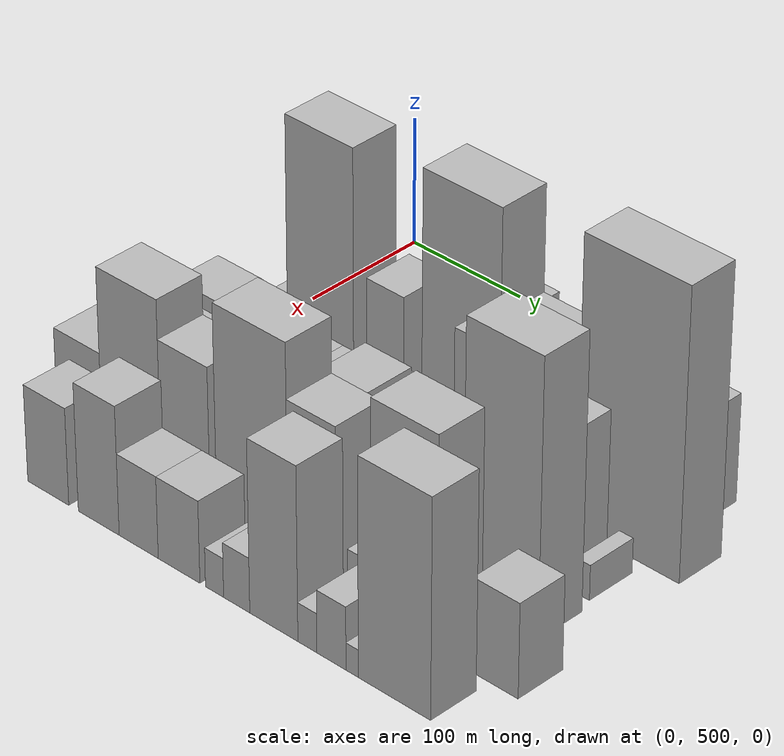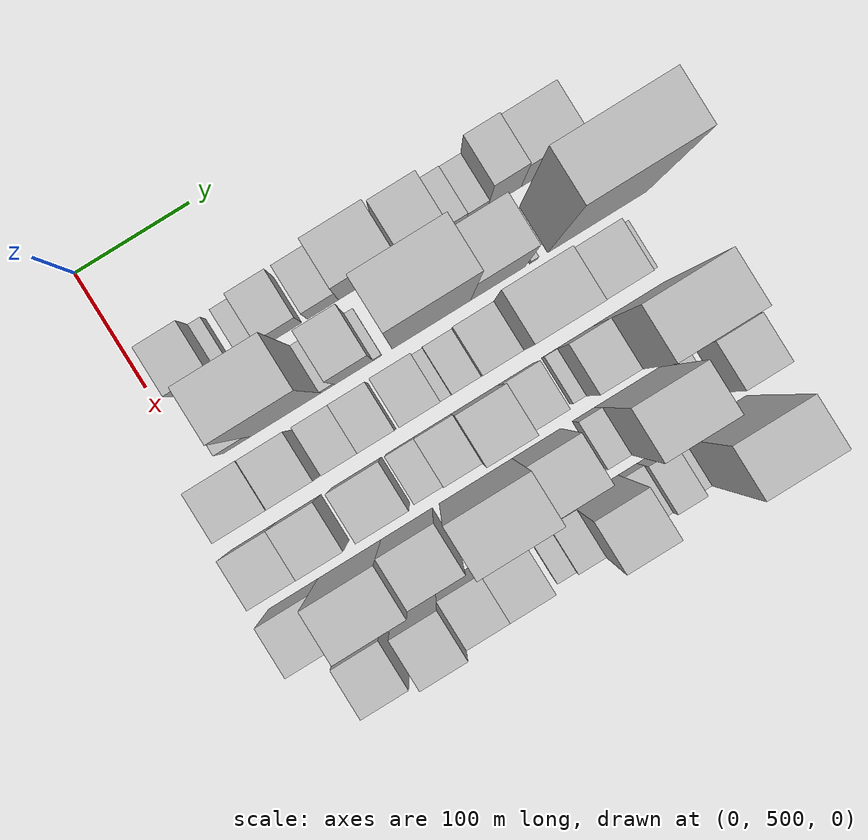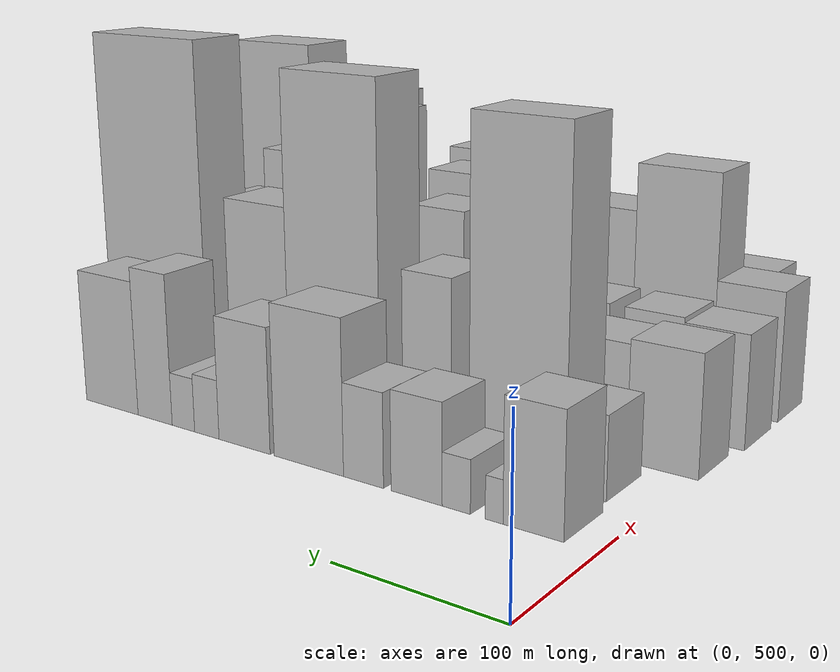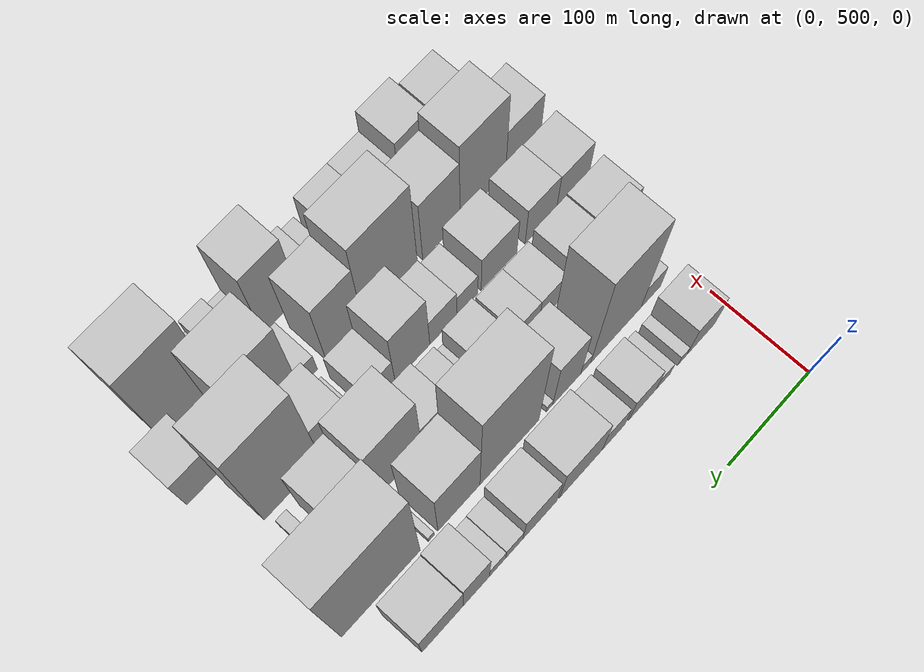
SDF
<sdf version="1.6">
 <world name="default">
  <model name="building_41">
   <static>1</static>
   <pose>100.0000 536.8398 0 0.000000 0.000000 0.000000</pose>
   <link name="link">
    <pose>0 0 34.50 0 0 0</pose>
    <collision name="collision"><geometry><box><size>40.0000 34.9624 69.0000</size></box></geometry></collision>
    <visual name="visual">
     <cast_shadows>0</cast_shadows>
     <geometry><box><size>40.0000 34.9624 69.0000</size></box></geometry>
     <material>
      <script>
       <uri>model://HANNAS_wall/materials/scripts</uri>
       <uri>model://HANNAS_wall/materials/textures</uri>
       <name>vrc/HANNAS_wall</name>
      </script>
     </material>
    </visual>
   </link>
  </model>
  <model name="building_42">
   <static>1</static>
   <pose>100.0000 559.6195 0 0.000000 0.000000 0.000000</pose>
   <link name="link">
    <pose>0 0 12.00 0 0 0</pose>
    <collision name="collision"><geometry><box><size>40.0000 10.5969 24.0000</size></box></geometry></collision>
    <visual name="visual">
     <cast_shadows>0</cast_shadows>
     <geometry><box><size>40.0000 10.5969 24.0000</size></box></geometry>
     <material>
      <script>
       <uri>model://HANNAS_wall/materials/scripts</uri>
       <uri>model://HANNAS_wall/materials/textures</uri>
       <name>vrc/HANNAS_wall</name>
      </script>
     </material>
    </visual>
   </link>
  </model>
  <model name="building_43">
   <static>1</static>
   <pose>100.0000 582.6176 0 0.000000 0.000000 0.000000</pose>
   <link name="link">
    <pose>0 0 15.00 0 0 0</pose>
    <collision name="collision"><geometry><box><size>40.0000 17.3994 30.0000</size></box></geometry></collision>
    <visual name="visual">
     <cast_shadows>0</cast_shadows>
     <geometry><box><size>40.0000 17.3994 30.0000</size></box></geometry>
     <material>
      <script>
       <uri>model://HANNAS_wall/materials/scripts</uri>
       <uri>model://HANNAS_wall/materials/textures</uri>
       <name>vrc/HANNAS_wall</name>
      </script>
     </material>
    </visual>
   </link>
  </model>
  <model name="building_44">
   <static>1</static>
   <pose>100.0000 607.7727 0 0.000000 0.000000 0.000000</pose>
   <link name="link">
    <pose>0 0 28.50 0 0 0</pose>
    <collision name="collision"><geometry><box><size>40.0000 32.9106 57.0000</size></box></geometry></collision>
    <visual name="visual">
     <cast_shadows>0</cast_shadows>
     <geometry><box><size>40.0000 32.9106 57.0000</size></box></geometry>
     <material>
      <script>
       <uri>model://HANNAS_wall/materials/scripts</uri>
       <uri>model://HANNAS_wall/materials/textures</uri>
       <name>vrc/HANNAS_wall</name>
      </script>
     </material>
    </visual>
   </link>
  </model>
  <model name="building_45">
   <static>1</static>
   <pose>100.0000 642.7919 0 0.000000 0.000000 0.000000</pose>
   <link name="link">
    <pose>0 0 27.00 0 0 0</pose>
    <collision name="collision"><geometry><box><size>40.0000 27.1279 54.0000</size></box></geometry></collision>
    <visual name="visual">
     <cast_shadows>0</cast_shadows>
     <geometry><box><size>40.0000 27.1279 54.0000</size></box></geometry>
     <material>
      <script>
       <uri>model://HANNAS_wall/materials/scripts</uri>
       <uri>model://HANNAS_wall/materials/textures</uri>
       <name>vrc/HANNAS_wall</name>
      </script>
     </material>
    </visual>
   </link>
  </model>
  <model name="building_46">
   <static>1</static>
   <pose>100.0000 681.2926 0 0.000000 0.000000 0.000000</pose>
   <link name="link">
    <pose>0 0 45.00 0 0 0</pose>
    <collision name="collision"><geometry><box><size>40.0000 49.8735 90.0000</size></box></geometry></collision>
    <visual name="visual">
     <cast_shadows>0</cast_shadows>
     <geometry><box><size>40.0000 49.8735 90.0000</size></box></geometry>
     <material>
      <script>
       <uri>model://HANNAS_wall/materials/scripts</uri>
       <uri>model://HANNAS_wall/materials/textures</uri>
       <name>vrc/HANNAS_wall</name>
      </script>
     </material>
    </visual>
   </link>
  </model>
  <model name="building_47">
   <static>1</static>
   <pose>100.0000 728.8882 0 0.000000 0.000000 0.000000</pose>
   <link name="link">
    <pose>0 0 37.50 0 0 0</pose>
    <collision name="collision"><geometry><box><size>40.0000 39.3178 75.0000</size></box></geometry></collision>
    <visual name="visual">
     <cast_shadows>0</cast_shadows>
     <geometry><box><size>40.0000 39.3178 75.0000</size></box></geometry>
     <material>
      <script>
       <uri>model://HANNAS_wall/materials/scripts</uri>
       <uri>model://HANNAS_wall/materials/textures</uri>
       <name>vrc/HANNAS_wall</name>
      </script>
     </material>
    </visual>
   </link>
  </model>
  <model name="building_48">
   <static>1</static>
   <pose>100.0000 758.3306 0 0.000000 0.000000 0.000000</pose>
   <link name="link">
    <pose>0 0 18.00 0 0 0</pose>
    <collision name="collision"><geometry><box><size>40.0000 19.5669 36.0000</size></box></geometry></collision>
    <visual name="visual">
     <cast_shadows>0</cast_shadows>
     <geometry><box><size>40.0000 19.5669 36.0000</size></box></geometry>
     <material>
      <script>
       <uri>model://HANNAS_wall/materials/scripts</uri>
       <uri>model://HANNAS_wall/materials/textures</uri>
       <name>vrc/HANNAS_wall</name>
      </script>
     </material>
    </visual>
   </link>
  </model>
  <model name="building_49">
   <static>1</static>
   <pose>100.0000 777.3705 0 0.000000 0.000000 0.000000</pose>
   <link name="link">
    <pose>0 0 16.50 0 0 0</pose>
    <collision name="collision"><geometry><box><size>40.0000 18.5128 33.0000</size></box></geometry></collision>
    <visual name="visual">
     <cast_shadows>0</cast_shadows>
     <geometry><box><size>40.0000 18.5128 33.0000</size></box></geometry>
     <material>
      <script>
       <uri>model://HANNAS_wall/materials/scripts</uri>
       <uri>model://HANNAS_wall/materials/textures</uri>
       <name>vrc/HANNAS_wall</name>
      </script>
     </material>
    </visual>
   </link>
  </model>
  <model name="building_50">
   <static>1</static>
   <pose>100.0000 801.1415 0 0.000000 0.000000 0.000000</pose>
   <link name="link">
    <pose>0 0 46.50 0 0 0</pose>
    <collision name="collision"><geometry><box><size>40.0000 29.0293 93.0000</size></box></geometry></collision>
    <visual name="visual">
     <cast_shadows>0</cast_shadows>
     <geometry><box><size>40.0000 29.0293 93.0000</size></box></geometry>
     <material>
      <script>
       <uri>model://HANNAS_wall/materials/scripts</uri>
       <uri>model://HANNAS_wall/materials/textures</uri>
       <name>vrc/HANNAS_wall</name>
      </script>
     </material>
    </visual>
   </link>
  </model>
  <model name="building_51">
   <static>1</static>
   <pose>100.0000 838.6315 0 0.000000 0.000000 0.000000</pose>
   <link name="link">
    <pose>0 0 42.00 0 0 0</pose>
    <collision name="collision"><geometry><box><size>40.0000 45.9507 84.0000</size></box></geometry></collision>
    <visual name="visual">
     <cast_shadows>0</cast_shadows>
     <geometry><box><size>40.0000 45.9507 84.0000</size></box></geometry>
     <material>
      <script>
       <uri>model://HANNAS_wall/materials/scripts</uri>
       <uri>model://HANNAS_wall/materials/textures</uri>
       <name>vrc/HANNAS_wall</name>
      </script>
     </material>
    </visual>
   </link>
  </model>
  <model name="building_94">
   <static>1</static>
   <pose>152.0000 535.8931 0 0.000000 0.000000 0.000000</pose>
   <link name="link">
    <pose>0 0 24.00 0 0 0</pose>
    <collision name="collision"><geometry><box><size>40.0000 24.1383 48.0000</size></box></geometry></collision>
    <visual name="visual">
     <cast_shadows>0</cast_shadows>
     <geometry><box><size>40.0000 24.1383 48.0000</size></box></geometry>
     <material>
      <script>
       <uri>model://HANNAS_wall/materials/scripts</uri>
       <uri>model://HANNAS_wall/materials/textures</uri>
       <name>vrc/HANNAS_wall</name>
      </script>
     </material>
    </visual>
   </link>
  </model>
  <model name="building_95">
   <static>1</static>
   <pose>152.0000 578.5690 0 0.000000 0.000000 0.000000</pose>
   <link name="link">
    <pose>0 0 99.00 0 0 0</pose>
    <collision name="collision"><geometry><box><size>40.0000 61.2135 198.0000</size></box></geometry></collision>
    <visual name="visual">
     <cast_shadows>0</cast_shadows>
     <geometry><box><size>40.0000 61.2135 198.0000</size></box></geometry>
     <material>
      <script>
       <uri>model://HANNAS_wall/materials/scripts</uri>
       <uri>model://HANNAS_wall/materials/textures</uri>
       <name>vrc/HANNAS_wall</name>
      </script>
     </material>
    </visual>
   </link>
  </model>
  <model name="building_96">
   <static>1</static>
   <pose>152.0000 615.1101 0 0.000000 0.000000 0.000000</pose>
   <link name="link">
    <pose>0 0 12.00 0 0 0</pose>
    <collision name="collision"><geometry><box><size>40.0000 11.8686 24.0000</size></box></geometry></collision>
    <visual name="visual">
     <cast_shadows>0</cast_shadows>
     <geometry><box><size>40.0000 11.8686 24.0000</size></box></geometry>
     <material>
      <script>
       <uri>model://HANNAS_wall/materials/scripts</uri>
       <uri>model://HANNAS_wall/materials/textures</uri>
       <name>vrc/HANNAS_wall</name>
      </script>
     </material>
    </visual>
   </link>
  </model>
  <model name="building_97">
   <static>1</static>
   <pose>152.0000 637.7986 0 0.000000 0.000000 0.000000</pose>
   <link name="link">
    <pose>0 0 52.50 0 0 0</pose>
    <collision name="collision"><geometry><box><size>40.0000 33.5085 105.0000</size></box></geometry></collision>
    <visual name="visual">
     <cast_shadows>0</cast_shadows>
     <geometry><box><size>40.0000 33.5085 105.0000</size></box></geometry>
     <material>
      <script>
       <uri>model://HANNAS_wall/materials/scripts</uri>
       <uri>model://HANNAS_wall/materials/textures</uri>
       <name>vrc/HANNAS_wall</name>
      </script>
     </material>
    </visual>
   </link>
  </model>
  <model name="building_98">
   <static>1</static>
   <pose>152.0000 658.2584 0 0.000000 0.000000 0.000000</pose>
   <link name="link">
    <pose>0 0 7.50 0 0 0</pose>
    <collision name="collision"><geometry><box><size>40.0000 7.4111 15.0000</size></box></geometry></collision>
    <visual name="visual">
     <cast_shadows>0</cast_shadows>
     <geometry><box><size>40.0000 7.4111 15.0000</size></box></geometry>
     <material>
      <script>
       <uri>model://HANNAS_wall/materials/scripts</uri>
       <uri>model://HANNAS_wall/materials/textures</uri>
       <name>vrc/HANNAS_wall</name>
      </script>
     </material>
    </visual>
   </link>
  </model>
  <model name="building_99">
   <static>1</static>
   <pose>152.0000 705.1736 0 0.000000 0.000000 0.000000</pose>
   <link name="link">
    <pose>0 0 105.00 0 0 0</pose>
    <collision name="collision"><geometry><box><size>40.0000 68.4195 210.0000</size></box></geometry></collision>
    <visual name="visual">
     <cast_shadows>0</cast_shadows>
     <geometry><box><size>40.0000 68.4195 210.0000</size></box></geometry>
     <material>
      <script>
       <uri>model://HANNAS_wall/materials/scripts</uri>
       <uri>model://HANNAS_wall/materials/textures</uri>
       <name>vrc/HANNAS_wall</name>
      </script>
     </material>
    </visual>
   </link>
  </model>
  <model name="building_100">
   <static>1</static>
   <pose>152.0000 763.2344 0 0.000000 0.000000 0.000000</pose>
   <link name="link">
    <pose>0 0 64.50 0 0 0</pose>
    <collision name="collision"><geometry><box><size>40.0000 47.7020 129.0000</size></box></geometry></collision>
    <visual name="visual">
     <cast_shadows>0</cast_shadows>
     <geometry><box><size>40.0000 47.7020 129.0000</size></box></geometry>
     <material>
      <script>
       <uri>model://HANNAS_wall/materials/scripts</uri>
       <uri>model://HANNAS_wall/materials/textures</uri>
       <name>vrc/HANNAS_wall</name>
      </script>
     </material>
    </visual>
   </link>
  </model>
  <model name="building_101">
   <static>1</static>
   <pose>152.0000 794.4815 0 0.000000 0.000000 0.000000</pose>
   <link name="link">
    <pose>0 0 7.50 0 0 0</pose>
    <collision name="collision"><geometry><box><size>40.0000 6.7923 15.0000</size></box></geometry></collision>
    <visual name="visual">
     <cast_shadows>0</cast_shadows>
     <geometry><box><size>40.0000 6.7923 15.0000</size></box></geometry>
     <material>
      <script>
       <uri>model://HANNAS_wall/materials/scripts</uri>
       <uri>model://HANNAS_wall/materials/textures</uri>
       <name>vrc/HANNAS_wall</name>
      </script>
     </material>
    </visual>
   </link>
  </model>
  <model name="building_102">
   <static>1</static>
   <pose>152.0000 850.2485 0 0.000000 0.000000 0.000000</pose>
   <link name="link">
    <pose>0 0 111.00 0 0 0</pose>
    <collision name="collision"><geometry><box><size>40.0000 86.7416 222.0000</size></box></geometry></collision>
    <visual name="visual">
     <cast_shadows>0</cast_shadows>
     <geometry><box><size>40.0000 86.7416 222.0000</size></box></geometry>
     <material>
      <script>
       <uri>model://HANNAS_wall/materials/scripts</uri>
       <uri>model://HANNAS_wall/materials/textures</uri>
       <name>vrc/HANNAS_wall</name>
      </script>
     </material>
    </visual>
   </link>
  </model>
  <model name="building_144">
   <static>1</static>
   <pose>204.0000 517.1696 0 0.000000 0.000000 0.000000</pose>
   <link name="link">
    <pose>0 0 36.00 0 0 0</pose>
    <collision name="collision"><geometry><box><size>40.0000 43.1829 72.0000</size></box></geometry></collision>
    <visual name="visual">
     <cast_shadows>0</cast_shadows>
     <geometry><box><size>40.0000 43.1829 72.0000</size></box></geometry>
     <material>
      <script>
       <uri>model://HANNAS_wall/materials/scripts</uri>
       <uri>model://HANNAS_wall/materials/textures</uri>
       <name>vrc/HANNAS_wall</name>
      </script>
     </material>
    </visual>
   </link>
  </model>
  <model name="building_145">
   <static>1</static>
   <pose>204.0000 557.6462 0 0.000000 0.000000 0.000000</pose>
   <link name="link">
    <pose>0 0 34.50 0 0 0</pose>
    <collision name="collision"><geometry><box><size>40.0000 37.7703 69.0000</size></box></geometry></collision>
    <visual name="visual">
     <cast_shadows>0</cast_shadows>
     <geometry><box><size>40.0000 37.7703 69.0000</size></box></geometry>
     <material>
      <script>
       <uri>model://HANNAS_wall/materials/scripts</uri>
       <uri>model://HANNAS_wall/materials/textures</uri>
       <name>vrc/HANNAS_wall</name>
      </script>
     </material>
    </visual>
   </link>
  </model>
  <model name="building_146">
   <static>1</static>
   <pose>204.0000 596.4897 0 0.000000 0.000000 0.000000</pose>
   <link name="link">
    <pose>0 0 27.00 0 0 0</pose>
    <collision name="collision"><geometry><box><size>40.0000 29.9165 54.0000</size></box></geometry></collision>
    <visual name="visual">
     <cast_shadows>0</cast_shadows>
     <geometry><box><size>40.0000 29.9165 54.0000</size></box></geometry>
     <material>
      <script>
       <uri>model://HANNAS_wall/materials/scripts</uri>
       <uri>model://HANNAS_wall/materials/textures</uri>
       <name>vrc/HANNAS_wall</name>
      </script>
     </material>
    </visual>
   </link>
  </model>
  <model name="building_147">
   <static>1</static>
   <pose>204.0000 626.8725 0 0.000000 0.000000 0.000000</pose>
   <link name="link">
    <pose>0 0 27.00 0 0 0</pose>
    <collision name="collision"><geometry><box><size>40.0000 30.8491 54.0000</size></box></geometry></collision>
    <visual name="visual">
     <cast_shadows>0</cast_shadows>
     <geometry><box><size>40.0000 30.8491 54.0000</size></box></geometry>
     <material>
      <script>
       <uri>model://HANNAS_wall/materials/scripts</uri>
       <uri>model://HANNAS_wall/materials/textures</uri>
       <name>vrc/HANNAS_wall</name>
      </script>
     </material>
    </visual>
   </link>
  </model>
  <model name="building_148">
   <static>1</static>
   <pose>204.0000 663.1877 0 0.000000 0.000000 0.000000</pose>
   <link name="link">
    <pose>0 0 31.50 0 0 0</pose>
    <collision name="collision"><geometry><box><size>40.0000 33.7814 63.0000</size></box></geometry></collision>
    <visual name="visual">
     <cast_shadows>0</cast_shadows>
     <geometry><box><size>40.0000 33.7814 63.0000</size></box></geometry>
     <material>
      <script>
       <uri>model://HANNAS_wall/materials/scripts</uri>
       <uri>model://HANNAS_wall/materials/textures</uri>
       <name>vrc/HANNAS_wall</name>
      </script>
     </material>
    </visual>
   </link>
  </model>
  <model name="building_149">
   <static>1</static>
   <pose>204.0000 684.9340 0 0.000000 0.000000 0.000000</pose>
   <link name="link">
    <pose>0 0 12.00 0 0 0</pose>
    <collision name="collision"><geometry><box><size>40.0000 9.7112 24.0000</size></box></geometry></collision>
    <visual name="visual">
     <cast_shadows>0</cast_shadows>
     <geometry><box><size>40.0000 9.7112 24.0000</size></box></geometry>
     <material>
      <script>
       <uri>model://HANNAS_wall/materials/scripts</uri>
       <uri>model://HANNAS_wall/materials/textures</uri>
       <name>vrc/HANNAS_wall</name>
      </script>
     </material>
    </visual>
   </link>
  </model>
  <model name="building_150">
   <static>1</static>
   <pose>204.0000 702.1311 0 0.000000 0.000000 0.000000</pose>
   <link name="link">
    <pose>0 0 21.00 0 0 0</pose>
    <collision name="collision"><geometry><box><size>40.0000 24.6830 42.0000</size></box></geometry></collision>
    <visual name="visual">
     <cast_shadows>0</cast_shadows>
     <geometry><box><size>40.0000 24.6830 42.0000</size></box></geometry>
     <material>
      <script>
       <uri>model://HANNAS_wall/materials/scripts</uri>
       <uri>model://HANNAS_wall/materials/textures</uri>
       <name>vrc/HANNAS_wall</name>
      </script>
     </material>
    </visual>
   </link>
  </model>
  <model name="building_151">
   <static>1</static>
   <pose>204.0000 731.3126 0 0.000000 0.000000 0.000000</pose>
   <link name="link">
    <pose>0 0 31.50 0 0 0</pose>
    <collision name="collision"><geometry><box><size>40.0000 33.6798 63.0000</size></box></geometry></collision>
    <visual name="visual">
     <cast_shadows>0</cast_shadows>
     <geometry><box><size>40.0000 33.6798 63.0000</size></box></geometry>
     <material>
      <script>
       <uri>model://HANNAS_wall/materials/scripts</uri>
       <uri>model://HANNAS_wall/materials/textures</uri>
       <name>vrc/HANNAS_wall</name>
      </script>
     </material>
    </visual>
   </link>
  </model>
  <model name="building_152">
   <static>1</static>
   <pose>204.0000 774.5409 0 0.000000 0.000000 0.000000</pose>
   <link name="link">
    <pose>0 0 75.00 0 0 0</pose>
    <collision name="collision"><geometry><box><size>40.0000 52.7768 150.0000</size></box></geometry></collision>
    <visual name="visual">
     <cast_shadows>0</cast_shadows>
     <geometry><box><size>40.0000 52.7768 150.0000</size></box></geometry>
     <material>
      <script>
       <uri>model://HANNAS_wall/materials/scripts</uri>
       <uri>model://HANNAS_wall/materials/textures</uri>
       <name>vrc/HANNAS_wall</name>
      </script>
     </material>
    </visual>
   </link>
  </model>
  <model name="building_153">
   <static>1</static>
   <pose>204.0000 822.1323 0 0.000000 0.000000 0.000000</pose>
   <link name="link">
    <pose>0 0 57.00 0 0 0</pose>
    <collision name="collision"><geometry><box><size>40.0000 42.4060 114.0000</size></box></geometry></collision>
    <visual name="visual">
     <cast_shadows>0</cast_shadows>
     <geometry><box><size>40.0000 42.4060 114.0000</size></box></geometry>
     <material>
      <script>
       <uri>model://HANNAS_wall/materials/scripts</uri>
       <uri>model://HANNAS_wall/materials/textures</uri>
       <name>vrc/HANNAS_wall</name>
      </script>
     </material>
    </visual>
   </link>
  </model>
  <model name="building_154">
   <static>1</static>
   <pose>204.0000 859.1493 0 0.000000 0.000000 0.000000</pose>
   <link name="link">
    <pose>0 0 13.50 0 0 0</pose>
    <collision name="collision"><geometry><box><size>40.0000 11.6279 27.0000</size></box></geometry></collision>
    <visual name="visual">
     <cast_shadows>0</cast_shadows>
     <geometry><box><size>40.0000 11.6279 27.0000</size></box></geometry>
     <material>
      <script>
       <uri>model://HANNAS_wall/materials/scripts</uri>
       <uri>model://HANNAS_wall/materials/textures</uri>
       <name>vrc/HANNAS_wall</name>
      </script>
     </material>
    </visual>
   </link>
  </model>
  <model name="building_199">
   <static>1</static>
   <pose>256.0000 510.9069 0 0.000000 0.000000 0.000000</pose>
   <link name="link">
    <pose>0 0 34.50 0 0 0</pose>
    <collision name="collision"><geometry><box><size>40.0000 39.9347 69.0000</size></box></geometry></collision>
    <visual name="visual">
     <cast_shadows>0</cast_shadows>
     <geometry><box><size>40.0000 39.9347 69.0000</size></box></geometry>
     <material>
      <script>
       <uri>model://HANNAS_wall/materials/scripts</uri>
       <uri>model://HANNAS_wall/materials/textures</uri>
       <name>vrc/HANNAS_wall</name>
      </script>
     </material>
    </visual>
   </link>
  </model>
  <model name="building_200">
   <static>1</static>
   <pose>256.0000 549.9861 0 0.000000 0.000000 0.000000</pose>
   <link name="link">
    <pose>0 0 36.00 0 0 0</pose>
    <collision name="collision"><geometry><box><size>40.0000 38.2237 72.0000</size></box></geometry></collision>
    <visual name="visual">
     <cast_shadows>0</cast_shadows>
     <geometry><box><size>40.0000 38.2237 72.0000</size></box></geometry>
     <material>
      <script>
       <uri>model://HANNAS_wall/materials/scripts</uri>
       <uri>model://HANNAS_wall/materials/textures</uri>
       <name>vrc/HANNAS_wall</name>
      </script>
     </material>
    </visual>
   </link>
  </model>
  <model name="building_201">
   <static>1</static>
   <pose>256.0000 600.5715 0 0.000000 0.000000 0.000000</pose>
   <link name="link">
    <pose>0 0 36.00 0 0 0</pose>
    <collision name="collision"><geometry><box><size>40.0000 42.9471 72.0000</size></box></geometry></collision>
    <visual name="visual">
     <cast_shadows>0</cast_shadows>
     <geometry><box><size>40.0000 42.9471 72.0000</size></box></geometry>
     <material>
      <script>
       <uri>model://HANNAS_wall/materials/scripts</uri>
       <uri>model://HANNAS_wall/materials/textures</uri>
       <name>vrc/HANNAS_wall</name>
      </script>
     </material>
    </visual>
   </link>
  </model>
  <model name="building_202">
   <static>1</static>
   <pose>256.0000 638.2822 0 0.000000 0.000000 0.000000</pose>
   <link name="link">
    <pose>0 0 22.50 0 0 0</pose>
    <collision name="collision"><geometry><box><size>40.0000 24.4742 45.0000</size></box></geometry></collision>
    <visual name="visual">
     <cast_shadows>0</cast_shadows>
     <geometry><box><size>40.0000 24.4742 45.0000</size></box></geometry>
     <material>
      <script>
       <uri>model://HANNAS_wall/materials/scripts</uri>
       <uri>model://HANNAS_wall/materials/textures</uri>
       <name>vrc/HANNAS_wall</name>
      </script>
     </material>
    </visual>
   </link>
  </model>
  <model name="building_203">
   <static>1</static>
   <pose>256.0000 666.5381 0 0.000000 0.000000 0.000000</pose>
   <link name="link">
    <pose>0 0 28.50 0 0 0</pose>
    <collision name="collision"><geometry><box><size>40.0000 32.0377 57.0000</size></box></geometry></collision>
    <visual name="visual">
     <cast_shadows>0</cast_shadows>
     <geometry><box><size>40.0000 32.0377 57.0000</size></box></geometry>
     <material>
      <script>
       <uri>model://HANNAS_wall/materials/scripts</uri>
       <uri>model://HANNAS_wall/materials/textures</uri>
       <name>vrc/HANNAS_wall</name>
      </script>
     </material>
    </visual>
   </link>
  </model>
  <model name="building_204">
   <static>1</static>
   <pose>256.0000 702.6567 0 0.000000 0.000000 0.000000</pose>
   <link name="link">
    <pose>0 0 57.00 0 0 0</pose>
    <collision name="collision"><geometry><box><size>40.0000 40.1993 114.0000</size></box></geometry></collision>
    <visual name="visual">
     <cast_shadows>0</cast_shadows>
     <geometry><box><size>40.0000 40.1993 114.0000</size></box></geometry>
     <material>
      <script>
       <uri>model://HANNAS_wall/materials/scripts</uri>
       <uri>model://HANNAS_wall/materials/textures</uri>
       <name>vrc/HANNAS_wall</name>
      </script>
     </material>
    </visual>
   </link>
  </model>
  <model name="building_205">
   <static>1</static>
   <pose>256.0000 738.7144 0 0.000000 0.000000 0.000000</pose>
   <link name="link">
    <pose>0 0 28.50 0 0 0</pose>
    <collision name="collision"><geometry><box><size>40.0000 31.9161 57.0000</size></box></geometry></collision>
    <visual name="visual">
     <cast_shadows>0</cast_shadows>
     <geometry><box><size>40.0000 31.9161 57.0000</size></box></geometry>
     <material>
      <script>
       <uri>model://HANNAS_wall/materials/scripts</uri>
       <uri>model://HANNAS_wall/materials/textures</uri>
       <name>vrc/HANNAS_wall</name>
      </script>
     </material>
    </visual>
   </link>
  </model>
  <model name="building_206">
   <static>1</static>
   <pose>256.0000 767.2187 0 0.000000 0.000000 0.000000</pose>
   <link name="link">
    <pose>0 0 12.00 0 0 0</pose>
    <collision name="collision"><geometry><box><size>40.0000 11.0925 24.0000</size></box></geometry></collision>
    <visual name="visual">
     <cast_shadows>0</cast_shadows>
     <geometry><box><size>40.0000 11.0925 24.0000</size></box></geometry>
     <material>
      <script>
       <uri>model://HANNAS_wall/materials/scripts</uri>
       <uri>model://HANNAS_wall/materials/textures</uri>
       <name>vrc/HANNAS_wall</name>
      </script>
     </material>
    </visual>
   </link>
  </model>
  <model name="building_207">
   <static>1</static>
   <pose>256.0000 789.4234 0 0.000000 0.000000 0.000000</pose>
   <link name="link">
    <pose>0 0 48.00 0 0 0</pose>
    <collision name="collision"><geometry><box><size>40.0000 33.3168 96.0000</size></box></geometry></collision>
    <visual name="visual">
     <cast_shadows>0</cast_shadows>
     <geometry><box><size>40.0000 33.3168 96.0000</size></box></geometry>
     <material>
      <script>
       <uri>model://HANNAS_wall/materials/scripts</uri>
       <uri>model://HANNAS_wall/materials/textures</uri>
       <name>vrc/HANNAS_wall</name>
      </script>
     </material>
    </visual>
   </link>
  </model>
  <model name="building_208">
   <static>1</static>
   <pose>256.0000 837.7916 0 0.000000 0.000000 0.000000</pose>
   <link name="link">
    <pose>0 0 105.00 0 0 0</pose>
    <collision name="collision"><geometry><box><size>40.0000 63.4196 210.0000</size></box></geometry></collision>
    <visual name="visual">
     <cast_shadows>0</cast_shadows>
     <geometry><box><size>40.0000 63.4196 210.0000</size></box></geometry>
     <material>
      <script>
       <uri>model://HANNAS_wall/materials/scripts</uri>
       <uri>model://HANNAS_wall/materials/textures</uri>
       <name>vrc/HANNAS_wall</name>
      </script>
     </material>
    </visual>
   </link>
  </model>
  <model name="building_243">
   <static>1</static>
   <pose>308.0000 512.7688 0 0.000000 0.000000 0.000000</pose>
   <link name="link">
    <pose>0 0 40.50 0 0 0</pose>
    <collision name="collision"><geometry><box><size>40.0000 42.9213 81.0000</size></box></geometry></collision>
    <visual name="visual">
     <cast_shadows>0</cast_shadows>
     <geometry><box><size>40.0000 42.9213 81.0000</size></box></geometry>
     <material>
      <script>
       <uri>model://HANNAS_wall/materials/scripts</uri>
       <uri>model://HANNAS_wall/materials/textures</uri>
       <name>vrc/HANNAS_wall</name>
      </script>
     </material>
    </visual>
   </link>
  </model>
  <model name="building_244">
   <static>1</static>
   <pose>308.0000 561.8024 0 0.000000 0.000000 0.000000</pose>
   <link name="link">
    <pose>0 0 73.50 0 0 0</pose>
    <collision name="collision"><geometry><box><size>40.0000 55.1460 147.0000</size></box></geometry></collision>
    <visual name="visual">
     <cast_shadows>0</cast_shadows>
     <geometry><box><size>40.0000 55.1460 147.0000</size></box></geometry>
     <material>
      <script>
       <uri>model://HANNAS_wall/materials/scripts</uri>
       <uri>model://HANNAS_wall/materials/textures</uri>
       <name>vrc/HANNAS_wall</name>
      </script>
     </material>
    </visual>
   </link>
  </model>
  <model name="building_245">
   <static>1</static>
   <pose>308.0000 611.7578 0 0.000000 0.000000 0.000000</pose>
   <link name="link">
    <pose>0 0 58.50 0 0 0</pose>
    <collision name="collision"><geometry><box><size>40.0000 44.7648 117.0000</size></box></geometry></collision>
    <visual name="visual">
     <cast_shadows>0</cast_shadows>
     <geometry><box><size>40.0000 44.7648 117.0000</size></box></geometry>
     <material>
      <script>
       <uri>model://HANNAS_wall/materials/scripts</uri>
       <uri>model://HANNAS_wall/materials/textures</uri>
       <name>vrc/HANNAS_wall</name>
      </script>
     </material>
    </visual>
   </link>
  </model>
  <model name="building_246">
   <static>1</static>
   <pose>308.0000 672.0543 0 0.000000 0.000000 0.000000</pose>
   <link name="link">
    <pose>0 0 84.00 0 0 0</pose>
    <collision name="collision"><geometry><box><size>40.0000 63.8281 168.0000</size></box></geometry></collision>
    <visual name="visual">
     <cast_shadows>0</cast_shadows>
     <geometry><box><size>40.0000 63.8281 168.0000</size></box></geometry>
     <material>
      <script>
       <uri>model://HANNAS_wall/materials/scripts</uri>
       <uri>model://HANNAS_wall/materials/textures</uri>
       <name>vrc/HANNAS_wall</name>
      </script>
     </material>
    </visual>
   </link>
  </model>
  <model name="building_247">
   <static>1</static>
   <pose>308.0000 725.1472 0 0.000000 0.000000 0.000000</pose>
   <link name="link">
    <pose>0 0 63.00 0 0 0</pose>
    <collision name="collision"><geometry><box><size>40.0000 42.3577 126.0000</size></box></geometry></collision>
    <visual name="visual">
     <cast_shadows>0</cast_shadows>
     <geometry><box><size>40.0000 42.3577 126.0000</size></box></geometry>
     <material>
      <script>
       <uri>model://HANNAS_wall/materials/scripts</uri>
       <uri>model://HANNAS_wall/materials/textures</uri>
       <name>vrc/HANNAS_wall</name>
      </script>
     </material>
    </visual>
   </link>
  </model>
  <model name="building_248">
   <static>1</static>
   <pose>308.0000 766.3223 0 0.000000 0.000000 0.000000</pose>
   <link name="link">
    <pose>0 0 19.50 0 0 0</pose>
    <collision name="collision"><geometry><box><size>40.0000 19.9925 39.0000</size></box></geometry></collision>
    <visual name="visual">
     <cast_shadows>0</cast_shadows>
     <geometry><box><size>40.0000 19.9925 39.0000</size></box></geometry>
     <material>
      <script>
       <uri>model://HANNAS_wall/materials/scripts</uri>
       <uri>model://HANNAS_wall/materials/textures</uri>
       <name>vrc/HANNAS_wall</name>
      </script>
     </material>
    </visual>
   </link>
  </model>
  <model name="building_249">
   <static>1</static>
   <pose>308.0000 804.7326 0 0.000000 0.000000 0.000000</pose>
   <link name="link">
    <pose>0 0 81.00 0 0 0</pose>
    <collision name="collision"><geometry><box><size>40.0000 56.8281 162.0000</size></box></geometry></collision>
    <visual name="visual">
     <cast_shadows>0</cast_shadows>
     <geometry><box><size>40.0000 56.8281 162.0000</size></box></geometry>
     <material>
      <script>
       <uri>model://HANNAS_wall/materials/scripts</uri>
       <uri>model://HANNAS_wall/materials/textures</uri>
       <name>vrc/HANNAS_wall</name>
      </script>
     </material>
    </visual>
   </link>
  </model>
  <model name="building_250">
   <static>1</static>
   <pose>308.0000 847.8142 0 0.000000 0.000000 0.000000</pose>
   <link name="link">
    <pose>0 0 12.00 0 0 0</pose>
    <collision name="collision"><geometry><box><size>40.0000 11.3353 24.0000</size></box></geometry></collision>
    <visual name="visual">
     <cast_shadows>0</cast_shadows>
     <geometry><box><size>40.0000 11.3353 24.0000</size></box></geometry>
     <material>
      <script>
       <uri>model://HANNAS_wall/materials/scripts</uri>
       <uri>model://HANNAS_wall/materials/textures</uri>
       <name>vrc/HANNAS_wall</name>
      </script>
     </material>
    </visual>
   </link>
  </model>
  <model name="building_251">
   <static>1</static>
   <pose>308.0000 881.5758 0 0.000000 0.000000 0.000000</pose>
   <link name="link">
    <pose>0 0 36.00 0 0 0</pose>
    <collision name="collision"><geometry><box><size>40.0000 38.1879 72.0000</size></box></geometry></collision>
    <visual name="visual">
     <cast_shadows>0</cast_shadows>
     <geometry><box><size>40.0000 38.1879 72.0000</size></box></geometry>
     <material>
      <script>
       <uri>model://HANNAS_wall/materials/scripts</uri>
       <uri>model://HANNAS_wall/materials/textures</uri>
       <name>vrc/HANNAS_wall</name>
      </script>
     </material>
    </visual>
   </link>
  </model>
  <model name="building_293">
   <static>1</static>
   <pose>360.0000 538.2717 0 0.000000 0.000000 0.000000</pose>
   <link name="link">
    <pose>0 0 37.50 0 0 0</pose>
    <collision name="collision"><geometry><box><size>40.0000 38.6999 75.0000</size></box></geometry></collision>
    <visual name="visual">
     <cast_shadows>0</cast_shadows>
     <geometry><box><size>40.0000 38.6999 75.0000</size></box></geometry>
     <material>
      <script>
       <uri>model://HANNAS_wall/materials/scripts</uri>
       <uri>model://HANNAS_wall/materials/textures</uri>
       <name>vrc/HANNAS_wall</name>
      </script>
     </material>
    </visual>
   </link>
  </model>
  <model name="building_294">
   <static>1</static>
   <pose>360.0000 585.5905 0 0.000000 0.000000 0.000000</pose>
   <link name="link">
    <pose>0 0 49.50 0 0 0</pose>
    <collision name="collision"><geometry><box><size>40.0000 37.9376 99.0000</size></box></geometry></collision>
    <visual name="visual">
     <cast_shadows>0</cast_shadows>
     <geometry><box><size>40.0000 37.9376 99.0000</size></box></geometry>
     <material>
      <script>
       <uri>model://HANNAS_wall/materials/scripts</uri>
       <uri>model://HANNAS_wall/materials/textures</uri>
       <name>vrc/HANNAS_wall</name>
      </script>
     </material>
    </visual>
   </link>
  </model>
  <model name="building_295">
   <static>1</static>
   <pose>360.0000 622.4498 0 0.000000 0.000000 0.000000</pose>
   <link name="link">
    <pose>0 0 31.50 0 0 0</pose>
    <collision name="collision"><geometry><box><size>40.0000 35.7809 63.0000</size></box></geometry></collision>
    <visual name="visual">
     <cast_shadows>0</cast_shadows>
     <geometry><box><size>40.0000 35.7809 63.0000</size></box></geometry>
     <material>
      <script>
       <uri>model://HANNAS_wall/materials/scripts</uri>
       <uri>model://HANNAS_wall/materials/textures</uri>
       <name>vrc/HANNAS_wall</name>
      </script>
     </material>
    </visual>
   </link>
  </model>
  <model name="building_296">
   <static>1</static>
   <pose>360.0000 659.1626 0 0.000000 0.000000 0.000000</pose>
   <link name="link">
    <pose>0 0 31.50 0 0 0</pose>
    <collision name="collision"><geometry><box><size>40.0000 37.6447 63.0000</size></box></geometry></collision>
    <visual name="visual">
     <cast_shadows>0</cast_shadows>
     <geometry><box><size>40.0000 37.6447 63.0000</size></box></geometry>
     <material>
      <script>
       <uri>model://HANNAS_wall/materials/scripts</uri>
       <uri>model://HANNAS_wall/materials/textures</uri>
       <name>vrc/HANNAS_wall</name>
      </script>
     </material>
    </visual>
   </link>
  </model>
  <model name="building_297">
   <static>1</static>
   <pose>360.0000 691.0802 0 0.000000 0.000000 0.000000</pose>
   <link name="link">
    <pose>0 0 15.00 0 0 0</pose>
    <collision name="collision"><geometry><box><size>40.0000 16.1905 30.0000</size></box></geometry></collision>
    <visual name="visual">
     <cast_shadows>0</cast_shadows>
     <geometry><box><size>40.0000 16.1905 30.0000</size></box></geometry>
     <material>
      <script>
       <uri>model://HANNAS_wall/materials/scripts</uri>
       <uri>model://HANNAS_wall/materials/textures</uri>
       <name>vrc/HANNAS_wall</name>
      </script>
     </material>
    </visual>
   </link>
  </model>
  <model name="building_298">
   <static>1</static>
   <pose>360.0000 710.7621 0 0.000000 0.000000 0.000000</pose>
   <link name="link">
    <pose>0 0 21.00 0 0 0</pose>
    <collision name="collision"><geometry><box><size>40.0000 23.1733 42.0000</size></box></geometry></collision>
    <visual name="visual">
     <cast_shadows>0</cast_shadows>
     <geometry><box><size>40.0000 23.1733 42.0000</size></box></geometry>
     <material>
      <script>
       <uri>model://HANNAS_wall/materials/scripts</uri>
       <uri>model://HANNAS_wall/materials/textures</uri>
       <name>vrc/HANNAS_wall</name>
      </script>
     </material>
    </visual>
   </link>
  </model>
  <model name="building_299">
   <static>1</static>
   <pose>360.0000 743.3988 0 0.000000 0.000000 0.000000</pose>
   <link name="link">
    <pose>0 0 66.00 0 0 0</pose>
    <collision name="collision"><geometry><box><size>40.0000 42.1000 132.0000</size></box></geometry></collision>
    <visual name="visual">
     <cast_shadows>0</cast_shadows>
     <geometry><box><size>40.0000 42.1000 132.0000</size></box></geometry>
     <material>
      <script>
       <uri>model://HANNAS_wall/materials/scripts</uri>
       <uri>model://HANNAS_wall/materials/textures</uri>
       <name>vrc/HANNAS_wall</name>
      </script>
     </material>
    </visual>
   </link>
  </model>
  <model name="building_300">
   <static>1</static>
   <pose>360.0000 772.6654 0 0.000000 0.000000 0.000000</pose>
   <link name="link">
    <pose>0 0 15.00 0 0 0</pose>
    <collision name="collision"><geometry><box><size>40.0000 16.4332 30.0000</size></box></geometry></collision>
    <visual name="visual">
     <cast_shadows>0</cast_shadows>
     <geometry><box><size>40.0000 16.4332 30.0000</size></box></geometry>
     <material>
      <script>
       <uri>model://HANNAS_wall/materials/scripts</uri>
       <uri>model://HANNAS_wall/materials/textures</uri>
       <name>vrc/HANNAS_wall</name>
      </script>
     </material>
    </visual>
   </link>
  </model>
  <model name="building_301">
   <static>1</static>
   <pose>360.0000 793.3469 0 0.000000 0.000000 0.000000</pose>
   <link name="link">
    <pose>0 0 24.00 0 0 0</pose>
    <collision name="collision"><geometry><box><size>40.0000 24.9298 48.0000</size></box></geometry></collision>
    <visual name="visual">
     <cast_shadows>0</cast_shadows>
     <geometry><box><size>40.0000 24.9298 48.0000</size></box></geometry>
     <material>
      <script>
       <uri>model://HANNAS_wall/materials/scripts</uri>
       <uri>model://HANNAS_wall/materials/textures</uri>
       <name>vrc/HANNAS_wall</name>
      </script>
     </material>
    </visual>
   </link>
  </model>
  <model name="building_302">
   <static>1</static>
   <pose>360.0000 811.0532 0 0.000000 0.000000 0.000000</pose>
   <link name="link">
    <pose>0 0 10.50 0 0 0</pose>
    <collision name="collision"><geometry><box><size>40.0000 10.4828 21.0000</size></box></geometry></collision>
    <visual name="visual">
     <cast_shadows>0</cast_shadows>
     <geometry><box><size>40.0000 10.4828 21.0000</size></box></geometry>
     <material>
      <script>
       <uri>model://HANNAS_wall/materials/scripts</uri>
       <uri>model://HANNAS_wall/materials/textures</uri>
       <name>vrc/HANNAS_wall</name>
      </script>
     </material>
    </visual>
   </link>
  </model>
  <model name="building_303">
   <static>1</static>
   <pose>360.0000 846.7076 0 0.000000 0.000000 0.000000</pose>
   <link name="link">
    <pose>0 0 82.50 0 0 0</pose>
    <collision name="collision"><geometry><box><size>40.0000 60.8261 165.0000</size></box></geometry></collision>
    <visual name="visual">
     <cast_shadows>0</cast_shadows>
     <geometry><box><size>40.0000 60.8261 165.0000</size></box></geometry>
     <material>
      <script>
       <uri>model://HANNAS_wall/materials/scripts</uri>
       <uri>model://HANNAS_wall/materials/textures</uri>
       <name>vrc/HANNAS_wall</name>
      </script>
     </material>
    </visual>
   </link>
  </model>
 </world>
</sdf>
